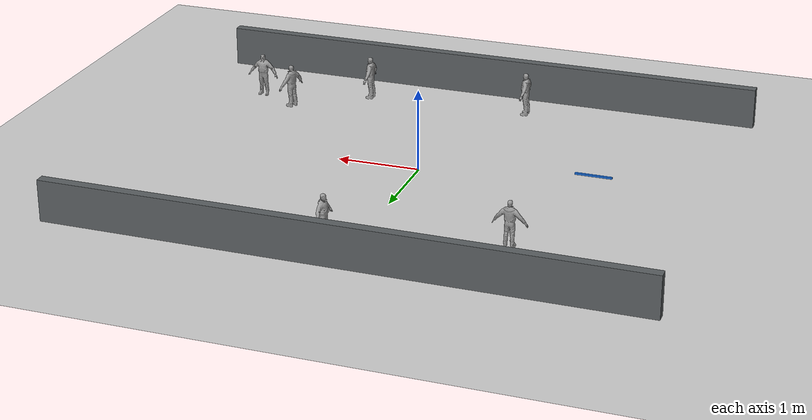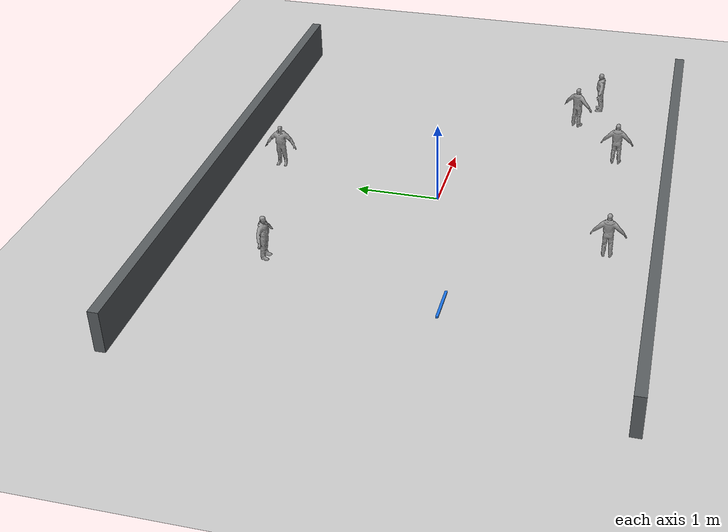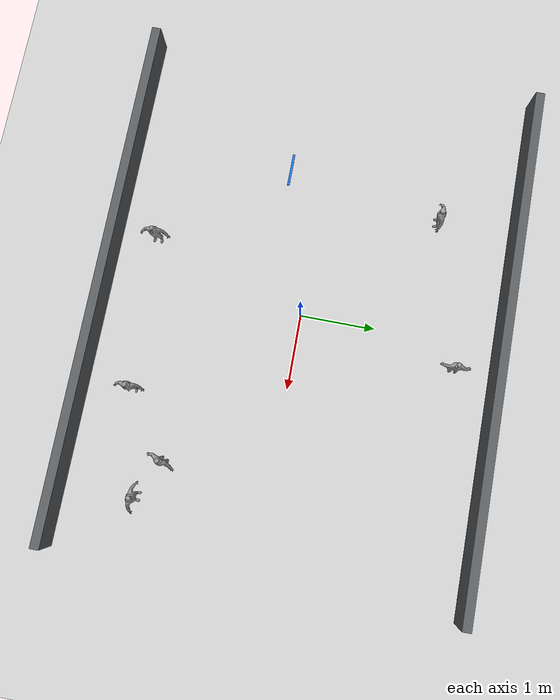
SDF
<?xml version="1.0" ?>
<sdf version="1.6">
  <world name="mosaic_dynamic_pedestrians">
    <physics name="default_physics" type="ode">
      <max_step_size>0.001</max_step_size>
      <real_time_factor>1.0</real_time_factor>
      <real_time_update_rate>1000</real_time_update_rate>
    </physics>

    <plugin name="gazebo_ros_init" filename="libgazebo_ros_init.so">
      <publish_rate>100</publish_rate>
    </plugin>
    <plugin name="gazebo_ros_factory" filename="libgazebo_ros_factory.so"/>
    <plugin name="gazebo_ros_state" filename="libgazebo_ros_state.so"/>

    <scene>
      <ambient>0.45 0.45 0.45 1</ambient>
      <background>0.78 0.82 0.86 1</background>
      <shadows>true</shadows>
    </scene>

    <light name="sun" type="directional">
      <cast_shadows>true</cast_shadows>
      <pose>0 0 10 0 0 0</pose>
      <diffuse>0.8 0.8 0.8 1</diffuse>
      <specular>0.2 0.2 0.2 1</specular>
      <attenuation>
        <range>1000</range>
        <constant>0.9</constant>
        <linear>0.01</linear>
        <quadratic>0.001</quadratic>
      </attenuation>
      <direction>-0.5 0.2 -1</direction>
    </light>

    <model name="ground_plane">
      <static>true</static>
      <link name="link">
        <collision name="collision">
          <geometry>
            <plane>
              <normal>0 0 1</normal>
              <size>20 20</size>
            </plane>
          </geometry>
          <surface>
            <friction>
              <ode>
                <mu>1.0</mu>
                <mu2>1.0</mu2>
              </ode>
            </friction>
          </surface>
        </collision>
        <visual name="visual">
          <geometry>
            <plane>
              <normal>0 0 1</normal>
              <size>20 20</size>
            </plane>
          </geometry>
          <material>
            <script>
              <uri>file://media/materials/scripts/gazebo.material</uri>
              <name>Gazebo/Grey</name>
            </script>
          </material>
        </visual>
      </link>
    </model>

    <model name="left_boundary">
      <static>true</static>
      <pose>0 2.65 0.25 0 0 0</pose>
      <link name="link">
        <collision name="collision">
          <geometry><box><size>7.0 0.12 0.5</size></box></geometry>
        </collision>
        <visual name="visual">
          <geometry><box><size>7.0 0.12 0.5</size></box></geometry>
          <material><ambient>0.35 0.37 0.38 1</ambient><diffuse>0.35 0.37 0.38 1</diffuse></material>
        </visual>
      </link>
    </model>

    <model name="right_boundary">
      <static>true</static>
      <pose>0 -2.65 0.25 0 0 0</pose>
      <link name="link">
        <collision name="collision">
          <geometry><box><size>7.0 0.12 0.5</size></box></geometry>
        </collision>
        <visual name="visual">
          <geometry><box><size>7.0 0.12 0.5</size></box></geometry>
          <material><ambient>0.35 0.37 0.38 1</ambient><diffuse>0.35 0.37 0.38 1</diffuse></material>
        </visual>
      </link>
    </model>

    <model name="start_marker">
      <static>true</static>
      <pose>-2.0 -0.5 0.01 0 0 0</pose>
      <link name="link">
        <visual name="visual">
          <geometry><box><size>0.45 0.03 0.02</size></box></geometry>
          <material><ambient>0.1 0.45 0.9 1</ambient><diffuse>0.1 0.45 0.9 1</diffuse></material>
        </visual>
      </link>
    </model>

    <include>
      <uri>model://pedestrian_obstacle</uri>
      <name>cross_clone_10</name>
      <pose>-0.7 -2.1 0 0 0 1.5708</pose>
    </include>
    <include>
      <uri>model://pedestrian_obstacle</uri>
      <name>cross_clone_11</name>
      <pose>0.35 2.1 0 0 0 -1.5708</pose>
    </include>
    <include>
      <uri>model://pedestrian_obstacle</uri>
      <name>cross_clone_12</name>
      <pose>1.35 -2.0 0 0 0 1.5708</pose>
    </include>
    <include>
      <uri>model://pedestrian_obstacle</uri>
      <name>cross_clone_13</name>
      <pose>2.2 -1.4 0 0 0 1.176</pose>
    </include>
    <include>
      <uri>model://pedestrian_obstacle</uri>
      <name>cross_clone_14</name>
      <pose>-1.6 1.6 0 0 0 0</pose>
    </include>
    <include>
      <uri>model://pedestrian_obstacle</uri>
      <name>cross_clone_15</name>
      <pose>2.7 -1.65 0 0 0 3.1416</pose>
    </include>
  </world>
</sdf>

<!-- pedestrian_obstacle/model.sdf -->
<sdf version="1.6">
  <model name="pedestrian_obstacle">
    <static>false</static>
    <allow_auto_disable>false</allow_auto_disable>
    <link name="body">
      <kinematic>true</kinematic>
      <gravity>false</gravity>
      <inertial>
        <mass>35.0</mass>
        <inertia>
          <ixx>1.0</ixx>
          <iyy>1.0</iyy>
          <izz>1.0</izz>
          <ixy>0.0</ixy>
          <ixz>0.0</ixz>
          <iyz>0.0</iyz>
        </inertia>
      </inertial>

      <collision name="collision">
        <pose>0 0 0.8 0 0 0</pose>
        <geometry>
          <cylinder>
            <radius>0.10</radius>
            <length>1.6</length>
          </cylinder>
        </geometry>
        <surface>
          <friction>
            <ode>
              <mu>0.0</mu>
              <mu2>0.0</mu2>
            </ode>
          </friction>
          <contact>
            <ode>
              <kp>1000000.0</kp>
              <kd>1.0</kd>
              <max_vel>0.1</max_vel>
              <min_depth>0.001</min_depth>
            </ode>
          </contact>
        </surface>
      </collision>

      <visual name="randy">
        <pose>0 0 0 0 0 0</pose>
        <geometry>
          <mesh>
            <uri>model://pedestrian_obstacle/meshes/rescue_randy.dae</uri>
            <scale>0.3 0.3 0.3</scale>
          </mesh>
        </geometry>
        <material>
          <script>
            <uri>model://pedestrian_obstacle/materials/scripts</uri>
            <uri>model://pedestrian_obstacle/materials/textures</uri>
            <name>RescueRandy/Diffuse</name>
          </script>
          <pbr>
            <metal>
              <albedo_map>model://pedestrian_obstacle/materials/textures/rescue_randy_albedo.png</albedo_map>
              <normal_map>model://pedestrian_obstacle/materials/textures/rescue_randy_normal.png</normal_map>
              <metalness_map>model://pedestrian_obstacle/materials/textures/rescue_randy_metalness.png</metalness_map>
              <roughness_map>model://pedestrian_obstacle/materials/textures/rescue_randy_roughness.png</roughness_map>
            </metal>
          </pbr>
        </material>
      </visual>
    </link>
  </model>
</sdf>
